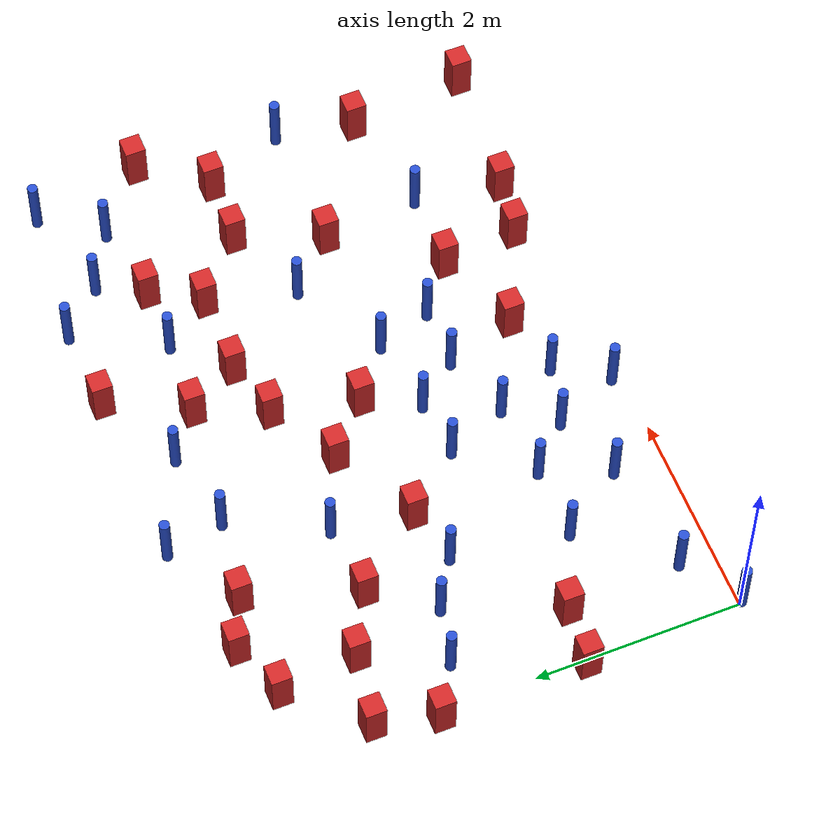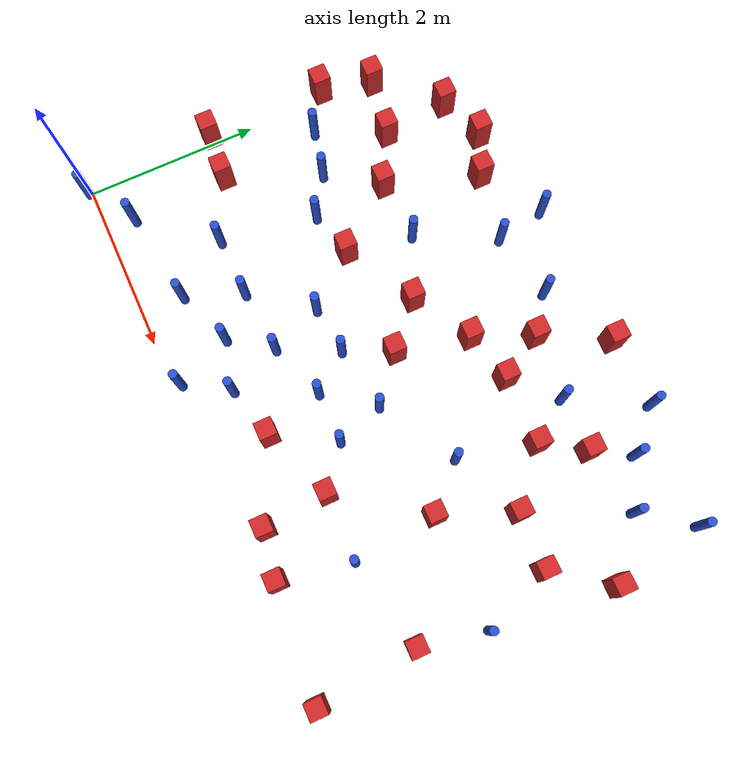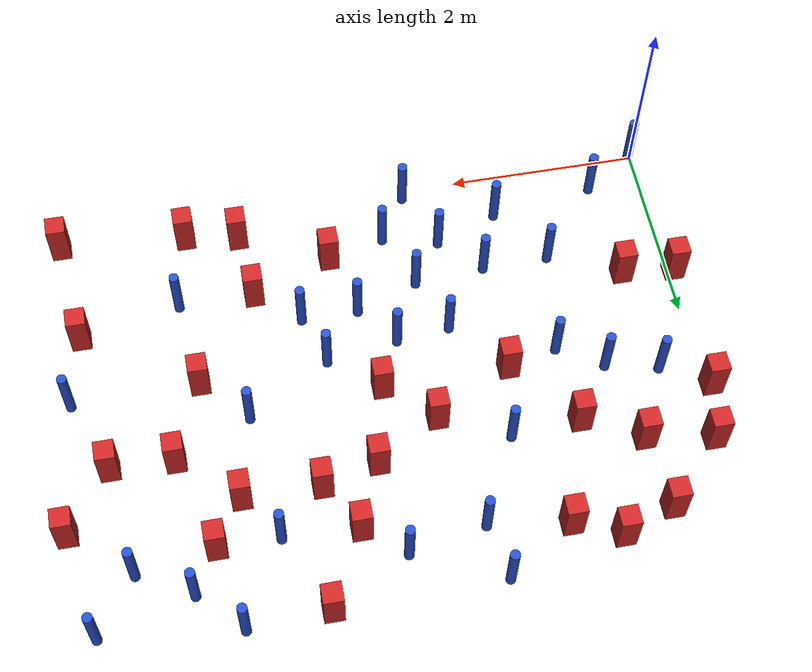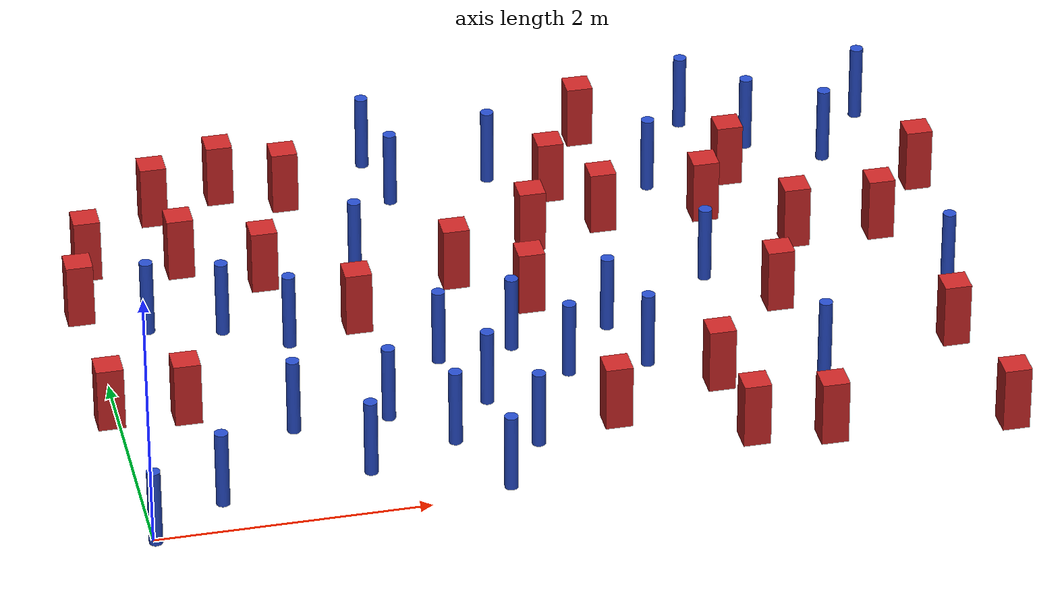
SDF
<sdf version="1.6">
 <model name="dense_36">
  <model name="pole_obstacle1">
   <static>true</static>
   <pose>1.21539966875 1.14167519535 2.88873142074e-08 -9.90536689672e-09 4.60219948993e-07 -1.20965994959e-07</pose>
   <link name="link">
    <pose>0 0 0.3 0 -0 0</pose>
    <inertial>
     <mass>1</mass>
     <inertia><ixx>0.145833</ixx><ixy>0</ixy><ixz>0</ixz><iyy>0.145833</iyy><iyz>0</iyz><izz>0.125</izz></inertia>
    </inertial>
    <collision name="collision">
     <geometry><cylinder><radius>0.05</radius><length>.6</length></cylinder></geometry>
    </collision>
    <visual name="visual">
     <geometry><cylinder><radius>0.05</radius><length>.6</length></cylinder></geometry>
     <material>
      <script><name>Gazebo/Blue</name><uri>file://media/materials/scripts/gazebo.material</uri></script>
     </material>
    </visual>
   </link>
  </model>
  <model name="pole_obstacle2">
   <static>true</static>
   <pose>3.31272624957 1.4470777101 2.88873142074e-08 -9.90536689395e-09 4.60219949e-07 -1.20965994953e-07</pose>
   <link name="link">
    <pose>0 0 0.3 0 -0 0</pose>
    <inertial>
     <mass>1</mass>
     <inertia><ixx>0.145833</ixx><ixy>0</ixy><ixz>0</ixz><iyy>0.145833</iyy><iyz>0</iyz><izz>0.125</izz></inertia>
    </inertial>
    <collision name="collision">
     <geometry><cylinder><radius>0.05</radius><length>.6</length></cylinder></geometry>
    </collision>
    <visual name="visual">
     <geometry><cylinder><radius>0.05</radius><length>.6</length></cylinder></geometry>
     <material>
      <script><name>Gazebo/Blue</name><uri>file://media/materials/scripts/gazebo.material</uri></script>
     </material>
    </visual>
   </link>
  </model>
  <model name="square_post_obstacle31">
   <static>true</static>
   <pose>1.69926338025 4.18269708458 8.22691968438e-08 7.2212513382e-06 -7.54495500217e-07 2.29674213826e-05</pose>
   <link name="link">
    <pose>0 0 0.25 0 -0 0</pose>
    <inertial>
     <mass>100</mass>
     <inertia>
      <ixx>0.166667</ixx>
      <ixy>0</ixy>
      <ixz>0</ixz>
      <iyy>0.166667</iyy>
      <iyz>0</iyz>
      <izz>0.166667</izz>
     </inertia>
    </inertial>
    <collision name="collision"><geometry><box><size>.2 .2 .5</size></box></geometry></collision>
    <visual name="visual">
     <geometry><box><size>.2 .2 .5</size></box></geometry>
     <material>
      <script><name>Gazebo/Red</name><uri>file://media/materials/scripts/gazebo.material</uri></script>
     </material>
    </visual>
   </link>
  </model>
  <model name="pole_obstacle24">
   <static>true</static>
   <pose>4.58728867437 2.49431679976 2.88873142074e-08 -9.90536690245e-09 4.6021994898e-07 -1.20965994966e-07</pose>
   <link name="link">
    <pose>0 0 0.3 0 -0 0</pose>
    <inertial>
     <mass>1</mass>
     <inertia><ixx>0.145833</ixx><ixy>0</ixy><ixz>0</ixz><iyy>0.145833</iyy><iyz>0</iyz><izz>0.125</izz></inertia>
    </inertial>
    <collision name="collision">
     <geometry><cylinder><radius>0.05</radius><length>.6</length></cylinder></geometry>
    </collision>
    <visual name="visual">
     <geometry><cylinder><radius>0.05</radius><length>.6</length></cylinder></geometry>
     <material>
      <script><name>Gazebo/Blue</name><uri>file://media/materials/scripts/gazebo.material</uri></script>
     </material>
    </visual>
   </link>
  </model>
  <model name="pole_obstacle26">
   <static>true</static>
   <pose>5.88674631557 3.96535810037 2.88873142074e-08 -9.9053669014e-09 4.60219948982e-07 -1.20965994965e-07</pose>
   <link name="link">
    <pose>0 0 0.3 0 -0 0</pose>
    <inertial>
     <mass>1</mass>
     <inertia><ixx>0.145833</ixx><ixy>0</ixy><ixz>0</ixz><iyy>0.145833</iyy><iyz>0</iyz><izz>0.125</izz></inertia>
    </inertial>
    <collision name="collision">
     <geometry><cylinder><radius>0.05</radius><length>.6</length></cylinder></geometry>
    </collision>
    <visual name="visual">
     <geometry><cylinder><radius>0.05</radius><length>.6</length></cylinder></geometry>
     <material>
      <script><name>Gazebo/Blue</name><uri>file://media/materials/scripts/gazebo.material</uri></script>
     </material>
    </visual>
   </link>
  </model>
  <model name="pole_obstacle28">
   <static>true</static>
   <pose>6.29714605439 4.52770322706 2.88873142074e-08 -9.90536690842e-09 4.60219948965e-07 -1.20965994976e-07</pose>
   <link name="link">
    <pose>0 0 0.3 0 -0 0</pose>
    <inertial>
     <mass>1</mass>
     <inertia><ixx>0.145833</ixx><ixy>0</ixy><ixz>0</ixz><iyy>0.145833</iyy><iyz>0</iyz><izz>0.125</izz></inertia>
    </inertial>
    <collision name="collision">
     <geometry><cylinder><radius>0.05</radius><length>.6</length></cylinder></geometry>
    </collision>
    <visual name="visual">
     <geometry><cylinder><radius>0.05</radius><length>.6</length></cylinder></geometry>
     <material>
      <script><name>Gazebo/Blue</name><uri>file://media/materials/scripts/gazebo.material</uri></script>
     </material>
    </visual>
   </link>
  </model>
  <model name="pole_obstacle29">
   <static>true</static>
   <pose>0.558175955447 0.34549063756 2.88873142074e-08 -9.90536689558e-09 4.60219948996e-07 -1.20965994957e-07</pose>
   <link name="link">
    <pose>0 0 0.3 0 -0 0</pose>
    <inertial>
     <mass>1</mass>
     <inertia><ixx>0.145833</ixx><ixy>0</ixy><ixz>0</ixz><iyy>0.145833</iyy><iyz>0</iyz><izz>0.125</izz></inertia>
    </inertial>
    <collision name="collision">
     <geometry><cylinder><radius>0.05</radius><length>.6</length></cylinder></geometry>
    </collision>
    <visual name="visual">
     <geometry><cylinder><radius>0.05</radius><length>.6</length></cylinder></geometry>
     <material>
      <script><name>Gazebo/Blue</name><uri>file://media/materials/scripts/gazebo.material</uri></script>
     </material>
    </visual>
   </link>
  </model>
  <model name="pole_obstacle30">
   <static>true</static>
   <pose>4.92379157811 4.68522182047 2.88873142074e-08 -9.90536690842e-09 4.60219948965e-07 -1.20965994976e-07</pose>
   <link name="link">
    <pose>0 0 0.3 0 -0 0</pose>
    <inertial>
     <mass>1</mass>
     <inertia><ixx>0.145833</ixx><ixy>0</ixy><ixz>0</ixz><iyy>0.145833</iyy><iyz>0</iyz><izz>0.125</izz></inertia>
    </inertial>
    <collision name="collision">
     <geometry><cylinder><radius>0.05</radius><length>.6</length></cylinder></geometry>
    </collision>
    <visual name="visual">
     <geometry><cylinder><radius>0.05</radius><length>.6</length></cylinder></geometry>
     <material>
      <script><name>Gazebo/Blue</name><uri>file://media/materials/scripts/gazebo.material</uri></script>
     </material>
    </visual>
   </link>
  </model>
  <model name="square_post_obstacle36">
   <static>true</static>
   <pose>6.17569900142 1.2903598487 8.22691968438e-08 7.2212513382e-06 -7.54495500217e-07 2.29674213826e-05</pose>
   <link name="link">
    <pose>0 0 0.25 0 -0 0</pose>
    <inertial>
     <mass>100</mass>
     <inertia>
      <ixx>0.166667</ixx>
      <ixy>0</ixy>
      <ixz>0</ixz>
      <iyy>0.166667</iyy>
      <iyz>0</iyz>
      <izz>0.166667</izz>
     </inertia>
    </inertial>
    <collision name="collision"><geometry><box><size>.2 .2 .5</size></box></geometry></collision>
    <visual name="visual">
     <geometry><box><size>.2 .2 .5</size></box></geometry>
     <material>
      <script><name>Gazebo/Red</name><uri>file://media/materials/scripts/gazebo.material</uri></script>
     </material>
    </visual>
   </link>
  </model>
  <model name="square_post_obstacle38">
   <static>true</static>
   <pose>-0.0602586245994 2.94378712359 8.22691968438e-08 7.2212513382e-06 -7.54495500217e-07 2.29674213826e-05</pose>
   <link name="link">
    <pose>0 0 0.25 0 -0 0</pose>
    <inertial>
     <mass>100</mass>
     <inertia>
      <ixx>0.166667</ixx>
      <ixy>0</ixy>
      <ixz>0</ixz>
      <iyy>0.166667</iyy>
      <iyz>0</iyz>
      <izz>0.166667</izz>
     </inertia>
    </inertial>
    <collision name="collision"><geometry><box><size>.2 .2 .5</size></box></geometry></collision>
    <visual name="visual">
     <geometry><box><size>.2 .2 .5</size></box></geometry>
     <material>
      <script><name>Gazebo/Red</name><uri>file://media/materials/scripts/gazebo.material</uri></script>
     </material>
    </visual>
   </link>
  </model>
  <model name="pole_obstacle43">
   <static>true</static>
   <pose>2.50424480207 4.05057288636 2.88873142074e-08 -9.90536689859e-09 4.60219948989e-07 -1.20965994961e-07</pose>
   <link name="link">
    <pose>0 0 0.3 0 -0 0</pose>
    <inertial>
     <mass>1</mass>
     <inertia><ixx>0.145833</ixx><ixy>0</ixy><ixz>0</ixz><iyy>0.145833</iyy><iyz>0</iyz><izz>0.125</izz></inertia>
    </inertial>
    <collision name="collision">
     <geometry><cylinder><radius>0.05</radius><length>.6</length></cylinder></geometry>
    </collision>
    <visual name="visual">
     <geometry><cylinder><radius>0.05</radius><length>.6</length></cylinder></geometry>
     <material>
      <script><name>Gazebo/Blue</name><uri>file://media/materials/scripts/gazebo.material</uri></script>
     </material>
    </visual>
   </link>
  </model>
  <model name="square_post_obstacle41">
   <static>true</static>
   <pose>4.97465609729 0.240932733704 8.22691968438e-08 7.2212513382e-06 -7.54495500217e-07 2.29674213826e-05</pose>
   <link name="link">
    <pose>0 0 0.25 0 -0 0</pose>
    <inertial>
     <mass>100</mass>
     <inertia>
      <ixx>0.166667</ixx>
      <ixy>0</ixy>
      <ixz>0</ixz>
      <iyy>0.166667</iyy>
      <iyz>0</iyz>
      <izz>0.166667</izz>
     </inertia>
    </inertial>
    <collision name="collision"><geometry><box><size>.2 .2 .5</size></box></geometry></collision>
    <visual name="visual">
     <geometry><box><size>.2 .2 .5</size></box></geometry>
     <material>
      <script><name>Gazebo/Red</name><uri>file://media/materials/scripts/gazebo.material</uri></script>
     </material>
    </visual>
   </link>
  </model>
  <model name="square_post_obstacle47">
   <static>true</static>
   <pose>4.09818582257 4.64468004644 8.22691968438e-08 7.2212513382e-06 -7.54495500217e-07 2.29674213826e-05</pose>
   <link name="link">
    <pose>0 0 0.25 0 -0 0</pose>
    <inertial>
     <mass>100</mass>
     <inertia>
      <ixx>0.166667</ixx>
      <ixy>0</ixy>
      <ixz>0</ixz>
      <iyy>0.166667</iyy>
      <iyz>0</iyz>
      <izz>0.166667</izz>
     </inertia>
    </inertial>
    <collision name="collision"><geometry><box><size>.2 .2 .5</size></box></geometry></collision>
    <visual name="visual">
     <geometry><box><size>.2 .2 .5</size></box></geometry>
     <material>
      <script><name>Gazebo/Red</name><uri>file://media/materials/scripts/gazebo.material</uri></script>
     </material>
    </visual>
   </link>
  </model>
  <model name="square_post_obstacle56">
   <static>true</static>
   <pose>0.768524490775 3.41879723513 8.22691968438e-08 7.2212513382e-06 -7.54495500217e-07 2.29674213826e-05</pose>
   <link name="link">
    <pose>0 0 0.25 0 -0 0</pose>
    <inertial>
     <mass>100</mass>
     <inertia>
      <ixx>0.166667</ixx>
      <ixy>0</ixy>
      <ixz>0</ixz>
      <iyy>0.166667</iyy>
      <iyz>0</iyz>
      <izz>0.166667</izz>
     </inertia>
    </inertial>
    <collision name="collision"><geometry><box><size>.2 .2 .5</size></box></geometry></collision>
    <visual name="visual">
     <geometry><box><size>.2 .2 .5</size></box></geometry>
     <material>
      <script><name>Gazebo/Red</name><uri>file://media/materials/scripts/gazebo.material</uri></script>
     </material>
    </visual>
   </link>
  </model>
  <model name="square_post_obstacle57">
   <static>true</static>
   <pose>3.50818055181 0.766504139414 8.22691968438e-08 7.2212513382e-06 -7.54495500217e-07 2.29674213826e-05</pose>
   <link name="link">
    <pose>0 0 0.25 0 -0 0</pose>
    <inertial>
     <mass>100</mass>
     <inertia>
      <ixx>0.166667</ixx>
      <ixy>0</ixy>
      <ixz>0</ixz>
      <iyy>0.166667</iyy>
      <iyz>0</iyz>
      <izz>0.166667</izz>
     </inertia>
    </inertial>
    <collision name="collision"><geometry><box><size>.2 .2 .5</size></box></geometry></collision>
    <visual name="visual">
     <geometry><box><size>.2 .2 .5</size></box></geometry>
     <material>
      <script><name>Gazebo/Red</name><uri>file://media/materials/scripts/gazebo.material</uri></script>
     </material>
    </visual>
   </link>
  </model>
  <model name="pole_obstacle55">
   <static>true</static>
   <pose>6.34371870974 2.04272851545 2.88873142074e-08 -9.90536689683e-09 4.60219948993e-07 -1.20965994957e-07</pose>
   <link name="link">
    <pose>0 0 0.3 0 -0 0</pose>
    <inertial>
     <mass>1</mass>
     <inertia><ixx>0.145833</ixx><ixy>0</ixy><ixz>0</ixz><iyy>0.145833</iyy><iyz>0</iyz><izz>0.125</izz></inertia>
    </inertial>
    <collision name="collision">
     <geometry><cylinder><radius>0.05</radius><length>.6</length></cylinder></geometry>
    </collision>
    <visual name="visual">
     <geometry><cylinder><radius>0.05</radius><length>.6</length></cylinder></geometry>
     <material>
      <script><name>Gazebo/Blue</name><uri>file://media/materials/scripts/gazebo.material</uri></script>
     </material>
    </visual>
   </link>
  </model>
  <model name="square_post_obstacle65">
   <static>true</static>
   <pose>1.23272457439 4.38700940078 8.22691968438e-08 7.2212513382e-06 -7.54495500217e-07 2.29674213826e-05</pose>
   <link name="link">
    <pose>0 0 0.25 0 -0 0</pose>
    <inertial>
     <mass>100</mass>
     <inertia>
      <ixx>0.166667</ixx>
      <ixy>0</ixy>
      <ixz>0</ixz>
      <iyy>0.166667</iyy>
      <iyz>0</iyz>
      <izz>0.166667</izz>
     </inertia>
    </inertial>
    <collision name="collision"><geometry><box><size>.2 .2 .5</size></box></geometry></collision>
    <visual name="visual">
     <geometry><box><size>.2 .2 .5</size></box></geometry>
     <material>
      <script><name>Gazebo/Red</name><uri>file://media/materials/scripts/gazebo.material</uri></script>
     </material>
    </visual>
   </link>
  </model>
  <model name="pole_obstacle64">
   <static>true</static>
   <pose>0.941703902987 2.533534934 2.88873142074e-08 -9.90536689636e-09 4.60219948994e-07 -1.20965994958e-07</pose>
   <link name="link">
    <pose>0 0 0.3 0 -0 0</pose>
    <inertial>
     <mass>1</mass>
     <inertia><ixx>0.145833</ixx><ixy>0</ixy><ixz>0</ixz><iyy>0.145833</iyy><iyz>0</iyz><izz>0.125</izz></inertia>
    </inertial>
    <collision name="collision">
     <geometry><cylinder><radius>0.05</radius><length>.6</length></cylinder></geometry>
    </collision>
    <visual name="visual">
     <geometry><cylinder><radius>0.05</radius><length>.6</length></cylinder></geometry>
     <material>
      <script><name>Gazebo/Blue</name><uri>file://media/materials/scripts/gazebo.material</uri></script>
     </material>
    </visual>
   </link>
  </model>
  <model name="square_post_obstacle67">
   <static>true</static>
   <pose>6.01877345874 2.8308237326 8.22691968438e-08 7.2212513382e-06 -7.54495500217e-07 2.29674213826e-05</pose>
   <link name="link">
    <pose>0 0 0.25 0 -0 0</pose>
    <inertial>
     <mass>100</mass>
     <inertia>
      <ixx>0.166667</ixx>
      <ixy>0</ixy>
      <ixz>0</ixz>
      <iyy>0.166667</iyy>
      <iyz>0</iyz>
      <izz>0.166667</izz>
     </inertia>
    </inertial>
    <collision name="collision"><geometry><box><size>.2 .2 .5</size></box></geometry></collision>
    <visual name="visual">
     <geometry><box><size>.2 .2 .5</size></box></geometry>
     <material>
      <script><name>Gazebo/Red</name><uri>file://media/materials/scripts/gazebo.material</uri></script>
     </material>
    </visual>
   </link>
  </model>
  <model name="square_post_obstacle69">
   <static>true</static>
   <pose>5.36907606385 2.85567561112 8.22691968438e-08 7.2212513382e-06 -7.54495500217e-07 2.29674213826e-05</pose>
   <link name="link">
    <pose>0 0 0.25 0 -0 0</pose>
    <inertial>
     <mass>100</mass>
     <inertia>
      <ixx>0.166667</ixx>
      <ixy>0</ixy>
      <ixz>0</ixz>
      <iyy>0.166667</iyy>
      <iyz>0</iyz>
      <izz>0.166667</izz>
     </inertia>
    </inertial>
    <collision name="collision"><geometry><box><size>.2 .2 .5</size></box></geometry></collision>
    <visual name="visual">
     <geometry><box><size>.2 .2 .5</size></box></geometry>
     <material>
      <script><name>Gazebo/Red</name><uri>file://media/materials/scripts/gazebo.material</uri></script>
     </material>
    </visual>
   </link>
  </model>
  <model name="pole_obstacle78">
   <static>true</static>
   <pose>1.39151959776 2.25622134894 2.88873142074e-08 -9.90536689791e-09 4.6021994899e-07 -1.20965994959e-07</pose>
   <link name="link">
    <pose>0 0 0.3 0 -0 0</pose>
    <inertial>
     <mass>1</mass>
     <inertia><ixx>0.145833</ixx><ixy>0</ixy><ixz>0</ixz><iyy>0.145833</iyy><iyz>0</iyz><izz>0.125</izz></inertia>
    </inertial>
    <collision name="collision">
     <geometry><cylinder><radius>0.05</radius><length>.6</length></cylinder></geometry>
    </collision>
    <visual name="visual">
     <geometry><cylinder><radius>0.05</radius><length>.6</length></cylinder></geometry>
     <material>
      <script><name>Gazebo/Blue</name><uri>file://media/materials/scripts/gazebo.material</uri></script>
     </material>
    </visual>
   </link>
  </model>
  <model name="pole_obstacle88">
   <static>true</static>
   <pose>5.13687059473 1.06550369926 2.88873142074e-08 -9.90536689445e-09 4.60219948999e-07 -1.20965994956e-07</pose>
   <link name="link">
    <pose>0 0 0.3 0 -0 0</pose>
    <inertial>
     <mass>1</mass>
     <inertia><ixx>0.145833</ixx><ixy>0</ixy><ixz>0</ixz><iyy>0.145833</iyy><iyz>0</iyz><izz>0.125</izz></inertia>
    </inertial>
    <collision name="collision">
     <geometry><cylinder><radius>0.05</radius><length>.6</length></cylinder></geometry>
    </collision>
    <visual name="visual">
     <geometry><cylinder><radius>0.05</radius><length>.6</length></cylinder></geometry>
     <material>
      <script><name>Gazebo/Blue</name><uri>file://media/materials/scripts/gazebo.material</uri></script>
     </material>
    </visual>
   </link>
  </model>
  <model name="pole_obstacle96">
   <static>true</static>
   <pose>2.3952366601 4.62188282429 2.88873142074e-08 -9.90536689859e-09 4.60219948989e-07 -1.20965994961e-07</pose>
   <link name="link">
    <pose>0 0 0.3 0 -0 0</pose>
    <inertial>
     <mass>1</mass>
     <inertia><ixx>0.145833</ixx><ixy>0</ixy><ixz>0</ixz><iyy>0.145833</iyy><iyz>0</iyz><izz>0.125</izz></inertia>
    </inertial>
    <collision name="collision">
     <geometry><cylinder><radius>0.05</radius><length>.6</length></cylinder></geometry>
    </collision>
    <visual name="visual">
     <geometry><cylinder><radius>0.05</radius><length>.6</length></cylinder></geometry>
     <material>
      <script><name>Gazebo/Blue</name><uri>file://media/materials/scripts/gazebo.material</uri></script>
     </material>
    </visual>
   </link>
  </model>
  <model name="square_post_obstacle97">
   <static>true</static>
   <pose>3.22430053221 2.39597877485 8.22691968438e-08 7.2212513382e-06 -7.54495500217e-07 2.29674213826e-05</pose>
   <link name="link">
    <pose>0 0 0.25 0 -0 0</pose>
    <inertial>
     <mass>100</mass>
     <inertia>
      <ixx>0.166667</ixx>
      <ixy>0</ixy>
      <ixz>0</ixz>
      <iyy>0.166667</iyy>
      <iyz>0</iyz>
      <izz>0.166667</izz>
     </inertia>
    </inertial>
    <collision name="collision"><geometry><box><size>.2 .2 .5</size></box></geometry></collision>
    <visual name="visual">
     <geometry><box><size>.2 .2 .5</size></box></geometry>
     <material>
      <script><name>Gazebo/Red</name><uri>file://media/materials/scripts/gazebo.material</uri></script>
     </material>
    </visual>
   </link>
  </model>
  <model name="pole_obstacle116">
   <static>true</static>
   <pose>4.46539809369 3.83447423002 2.88873142074e-08 -9.90536690245e-09 4.6021994898e-07 -1.20965994966e-07</pose>
   <link name="link">
    <pose>0 0 0.3 0 -0 0</pose>
    <inertial>
     <mass>1</mass>
     <inertia><ixx>0.145833</ixx><ixy>0</ixy><ixz>0</ixz><iyy>0.145833</iyy><iyz>0</iyz><izz>0.125</izz></inertia>
    </inertial>
    <collision name="collision">
     <geometry><cylinder><radius>0.05</radius><length>.6</length></cylinder></geometry>
    </collision>
    <visual name="visual">
     <geometry><cylinder><radius>0.05</radius><length>.6</length></cylinder></geometry>
     <material>
      <script><name>Gazebo/Blue</name><uri>file://media/materials/scripts/gazebo.material</uri></script>
     </material>
    </visual>
   </link>
  </model>
  <model name="square_post_obstacle106">
   <static>true</static>
   <pose>0.491554787175 1.47907717243 8.22691968438e-08 7.2212513382e-06 -7.54495500217e-07 2.29674213826e-05</pose>
   <link name="link">
    <pose>0 0 0.25 0 -0 0</pose>
    <inertial>
     <mass>100</mass>
     <inertia>
      <ixx>0.166667</ixx>
      <ixy>0</ixy>
      <ixz>0</ixz>
      <iyy>0.166667</iyy>
      <iyz>0</iyz>
      <izz>0.166667</izz>
     </inertia>
    </inertial>
    <collision name="collision"><geometry><box><size>.2 .2 .5</size></box></geometry></collision>
    <visual name="visual">
     <geometry><box><size>.2 .2 .5</size></box></geometry>
     <material>
      <script><name>Gazebo/Red</name><uri>file://media/materials/scripts/gazebo.material</uri></script>
     </material>
    </visual>
   </link>
  </model>
  <model name="pole_obstacle119">
   <static>true</static>
   <pose>1.65755842974 0.504248588028 2.88873142074e-08 -9.90536689799e-09 4.6021994899e-07 -1.20965994959e-07</pose>
   <link name="link">
    <pose>0 0 0.3 0 -0 0</pose>
    <inertial>
     <mass>1</mass>
     <inertia><ixx>0.145833</ixx><ixy>0</ixy><ixz>0</ixz><iyy>0.145833</iyy><iyz>0</iyz><izz>0.125</izz></inertia>
    </inertial>
    <collision name="collision">
     <geometry><cylinder><radius>0.05</radius><length>.6</length></cylinder></geometry>
    </collision>
    <visual name="visual">
     <geometry><cylinder><radius>0.05</radius><length>.6</length></cylinder></geometry>
     <material>
      <script><name>Gazebo/Blue</name><uri>file://media/materials/scripts/gazebo.material</uri></script>
     </material>
    </visual>
   </link>
  </model>
  <model name="pole_obstacle121">
   <static>true</static>
   <pose>2.65310656348 1.21262609922 2.88873142074e-08 -9.90536689395e-09 4.60219949e-07 -1.20965994953e-07</pose>
   <link name="link">
    <pose>0 0 0.3 0 -0 0</pose>
    <inertial>
     <mass>1</mass>
     <inertia><ixx>0.145833</ixx><ixy>0</ixy><ixz>0</ixz><iyy>0.145833</iyy><iyz>0</iyz><izz>0.125</izz></inertia>
    </inertial>
    <collision name="collision">
     <geometry><cylinder><radius>0.05</radius><length>.6</length></cylinder></geometry>
    </collision>
    <visual name="visual">
     <geometry><cylinder><radius>0.05</radius><length>.6</length></cylinder></geometry>
     <material>
      <script><name>Gazebo/Blue</name><uri>file://media/materials/scripts/gazebo.material</uri></script>
     </material>
    </visual>
   </link>
  </model>
  <model name="pole_obstacle122">
   <static>true</static>
   <pose>2.59131585483 0.109405834646 2.88873142074e-08 -9.90536691979e-09 4.60219948939e-07 -1.20965994984e-07</pose>
   <link name="link">
    <pose>0 0 0.3 0 -0 0</pose>
    <inertial>
     <mass>1</mass>
     <inertia><ixx>0.145833</ixx><ixy>0</ixy><ixz>0</ixz><iyy>0.145833</iyy><iyz>0</iyz><izz>0.125</izz></inertia>
    </inertial>
    <collision name="collision">
     <geometry><cylinder><radius>0.05</radius><length>.6</length></cylinder></geometry>
    </collision>
    <visual name="visual">
     <geometry><cylinder><radius>0.05</radius><length>.6</length></cylinder></geometry>
     <material>
      <script><name>Gazebo/Blue</name><uri>file://media/materials/scripts/gazebo.material</uri></script>
     </material>
    </visual>
   </link>
  </model>
  <model name="square_post_obstacle113">
   <static>true</static>
   <pose>5.03201818125 2.03035328564 8.22691968438e-08 7.2212513382e-06 -7.54495500217e-07 2.29674213826e-05</pose>
   <link name="link">
    <pose>0 0 0.25 0 -0 0</pose>
    <inertial>
     <mass>100</mass>
     <inertia>
      <ixx>0.166667</ixx>
      <ixy>0</ixy>
      <ixz>0</ixz>
      <iyy>0.166667</iyy>
      <iyz>0</iyz>
      <izz>0.166667</izz>
     </inertia>
    </inertial>
    <collision name="collision"><geometry><box><size>.2 .2 .5</size></box></geometry></collision>
    <visual name="visual">
     <geometry><box><size>.2 .2 .5</size></box></geometry>
     <material>
      <script><name>Gazebo/Red</name><uri>file://media/materials/scripts/gazebo.material</uri></script>
     </material>
    </visual>
   </link>
  </model>
  <model name="pole_obstacle138">
   <static>true</static>
   <pose>2.97544988494 1.87051776934 2.88873142074e-08 -9.90536689395e-09 4.60219949e-07 -1.20965994953e-07</pose>
   <link name="link">
    <pose>0 0 0.3 0 -0 0</pose>
    <inertial>
     <mass>1</mass>
     <inertia><ixx>0.145833</ixx><ixy>0</ixy><ixz>0</ixz><iyy>0.145833</iyy><iyz>0</iyz><izz>0.125</izz></inertia>
    </inertial>
    <collision name="collision">
     <geometry><cylinder><radius>0.05</radius><length>.6</length></cylinder></geometry>
    </collision>
    <visual name="visual">
     <geometry><cylinder><radius>0.05</radius><length>.6</length></cylinder></geometry>
     <material>
      <script><name>Gazebo/Blue</name><uri>file://media/materials/scripts/gazebo.material</uri></script>
     </material>
    </visual>
   </link>
  </model>
  <model name="square_post_obstacle119">
   <static>true</static>
   <pose>-0.0599442533071 1.5346006033 8.22691968438e-08 7.2212513382e-06 -7.54495500217e-07 2.29674213826e-05</pose>
   <link name="link">
    <pose>0 0 0.25 0 -0 0</pose>
    <inertial>
     <mass>100</mass>
     <inertia>
      <ixx>0.166667</ixx>
      <ixy>0</ixy>
      <ixz>0</ixz>
      <iyy>0.166667</iyy>
      <iyz>0</iyz>
      <izz>0.166667</izz>
     </inertia>
    </inertial>
    <collision name="collision"><geometry><box><size>.2 .2 .5</size></box></geometry></collision>
    <visual name="visual">
     <geometry><box><size>.2 .2 .5</size></box></geometry>
     <material>
      <script><name>Gazebo/Red</name><uri>file://media/materials/scripts/gazebo.material</uri></script>
     </material>
    </visual>
   </link>
  </model>
  <model name="square_post_obstacle123">
   <static>true</static>
   <pose>3.41316728436 3.22763096971 8.22691968438e-08 7.2212513382e-06 -7.54495500217e-07 2.29674213826e-05</pose>
   <link name="link">
    <pose>0 0 0.25 0 -0 0</pose>
    <inertial>
     <mass>100</mass>
     <inertia>
      <ixx>0.166667</ixx>
      <ixy>0</ixy>
      <ixz>0</ixz>
      <iyy>0.166667</iyy>
      <iyz>0</iyz>
      <izz>0.166667</izz>
     </inertia>
    </inertial>
    <collision name="collision"><geometry><box><size>.2 .2 .5</size></box></geometry></collision>
    <visual name="visual">
     <geometry><box><size>.2 .2 .5</size></box></geometry>
     <material>
      <script><name>Gazebo/Red</name><uri>file://media/materials/scripts/gazebo.material</uri></script>
     </material>
    </visual>
   </link>
  </model>
  <model name="square_post_obstacle127">
   <static>true</static>
   <pose>5.08931030166 3.83615676052 8.22691968438e-08 7.2212513382e-06 -7.54495500217e-07 2.29674213826e-05</pose>
   <link name="link">
    <pose>0 0 0.25 0 -0 0</pose>
    <inertial>
     <mass>100</mass>
     <inertia>
      <ixx>0.166667</ixx>
      <ixy>0</ixy>
      <ixz>0</ixz>
      <iyy>0.166667</iyy>
      <iyz>0</iyz>
      <izz>0.166667</izz>
     </inertia>
    </inertial>
    <collision name="collision"><geometry><box><size>.2 .2 .5</size></box></geometry></collision>
    <visual name="visual">
     <geometry><box><size>.2 .2 .5</size></box></geometry>
     <material>
      <script><name>Gazebo/Red</name><uri>file://media/materials/scripts/gazebo.material</uri></script>
     </material>
    </visual>
   </link>
  </model>
  <model name="pole_obstacle142">
   <static>true</static>
   <pose>5.34613406979 4.26592915778 2.88873142074e-08 -9.90536690842e-09 4.60219948965e-07 -1.20965994976e-07</pose>
   <link name="link">
    <pose>0 0 0.3 0 -0 0</pose>
    <inertial>
     <mass>1</mass>
     <inertia><ixx>0.145833</ixx><ixy>0</ixy><ixz>0</ixz><iyy>0.145833</iyy><iyz>0</iyz><izz>0.125</izz></inertia>
    </inertial>
    <collision name="collision">
     <geometry><cylinder><radius>0.05</radius><length>.6</length></cylinder></geometry>
    </collision>
    <visual name="visual">
     <geometry><cylinder><radius>0.05</radius><length>.6</length></cylinder></geometry>
     <material>
      <script><name>Gazebo/Blue</name><uri>file://media/materials/scripts/gazebo.material</uri></script>
     </material>
    </visual>
   </link>
  </model>
  <model name="square_post_obstacle135">
   <static>true</static>
   <pose>2.74764541 2.83754624088 8.22691968438e-08 7.2212513382e-06 -7.54495500217e-07 2.29674213826e-05</pose>
   <link name="link">
    <pose>0 0 0.25 0 -0 0</pose>
    <inertial>
     <mass>100</mass>
     <inertia>
      <ixx>0.166667</ixx>
      <ixy>0</ixy>
      <ixz>0</ixz>
      <iyy>0.166667</iyy>
      <iyz>0</iyz>
      <izz>0.166667</izz>
     </inertia>
    </inertial>
    <collision name="collision"><geometry><box><size>.2 .2 .5</size></box></geometry></collision>
    <visual name="visual">
     <geometry><box><size>.2 .2 .5</size></box></geometry>
     <material>
      <script><name>Gazebo/Red</name><uri>file://media/materials/scripts/gazebo.material</uri></script>
     </material>
    </visual>
   </link>
  </model>
  <model name="pole_obstacle145">
   <static>true</static>
   <pose>2.90043295615 0.603558059964 2.88873142074e-08 -9.90536689285e-09 4.60219949002e-07 -1.20965994953e-07</pose>
   <link name="link">
    <pose>0 0 0.3 0 -0 0</pose>
    <inertial>
     <mass>1</mass>
     <inertia><ixx>0.145833</ixx><ixy>0</ixy><ixz>0</ixz><iyy>0.145833</iyy><iyz>0</iyz><izz>0.125</izz></inertia>
    </inertial>
    <collision name="collision">
     <geometry><cylinder><radius>0.05</radius><length>.6</length></cylinder></geometry>
    </collision>
    <visual name="visual">
     <geometry><cylinder><radius>0.05</radius><length>.6</length></cylinder></geometry>
     <material>
      <script><name>Gazebo/Blue</name><uri>file://media/materials/scripts/gazebo.material</uri></script>
     </material>
    </visual>
   </link>
  </model>
  <model name="pole_obstacle146">
   <static>true</static>
   <pose>1.91426054527 1.15429620357 2.88873142074e-08 -9.90536689672e-09 4.60219948993e-07 -1.20965994959e-07</pose>
   <link name="link">
    <pose>0 0 0.3 0 -0 0</pose>
    <inertial>
     <mass>1</mass>
     <inertia><ixx>0.145833</ixx><ixy>0</ixy><ixz>0</ixz><iyy>0.145833</iyy><iyz>0</iyz><izz>0.125</izz></inertia>
    </inertial>
    <collision name="collision">
     <geometry><cylinder><radius>0.05</radius><length>.6</length></cylinder></geometry>
    </collision>
    <visual name="visual">
     <geometry><cylinder><radius>0.05</radius><length>.6</length></cylinder></geometry>
     <material>
      <script><name>Gazebo/Blue</name><uri>file://media/materials/scripts/gazebo.material</uri></script>
     </material>
    </visual>
   </link>
  </model>
  <model name="square_post_obstacle155">
   <static>true</static>
   <pose>3.69891914513 3.88703211298 8.22691968438e-08 7.2212513382e-06 -7.54495500217e-07 2.29674213826e-05</pose>
   <link name="link">
    <pose>0 0 0.25 0 -0 0</pose>
    <inertial>
     <mass>100</mass>
     <inertia>
      <ixx>0.166667</ixx>
      <ixy>0</ixy>
      <ixz>0</ixz>
      <iyy>0.166667</iyy>
      <iyz>0</iyz>
      <izz>0.166667</izz>
     </inertia>
    </inertial>
    <collision name="collision"><geometry><box><size>.2 .2 .5</size></box></geometry></collision>
    <visual name="visual">
     <geometry><box><size>.2 .2 .5</size></box></geometry>
     <material>
      <script><name>Gazebo/Red</name><uri>file://media/materials/scripts/gazebo.material</uri></script>
     </material>
    </visual>
   </link>
  </model>
  <model name="square_post_obstacle159">
   <static>true</static>
   <pose>1.9224101247 2.39501508181 8.22691968438e-08 7.2212513382e-06 -7.54495500217e-07 2.29674213826e-05</pose>
   <link name="link">
    <pose>0 0 0.25 0 -0 0</pose>
    <inertial>
     <mass>100</mass>
     <inertia>
      <ixx>0.166667</ixx>
      <ixy>0</ixy>
      <ixz>0</ixz>
      <iyy>0.166667</iyy>
      <iyz>0</iyz>
      <izz>0.166667</izz>
     </inertia>
    </inertial>
    <collision name="collision"><geometry><box><size>.2 .2 .5</size></box></geometry></collision>
    <visual name="visual">
     <geometry><box><size>.2 .2 .5</size></box></geometry>
     <material>
      <script><name>Gazebo/Red</name><uri>file://media/materials/scripts/gazebo.material</uri></script>
     </material>
    </visual>
   </link>
  </model>
  <model name="square_post_obstacle161">
   <static>true</static>
   <pose>6.29381989404 0.133482597143 8.22691968438e-08 7.2212513382e-06 -7.54495500217e-07 2.29674213826e-05</pose>
   <link name="link">
    <pose>0 0 0.25 0 -0 0</pose>
    <inertial>
     <mass>100</mass>
     <inertia>
      <ixx>0.166667</ixx>
      <ixy>0</ixy>
      <ixz>0</ixz>
      <iyy>0.166667</iyy>
      <iyz>0</iyz>
      <izz>0.166667</izz>
     </inertia>
    </inertial>
    <collision name="collision"><geometry><box><size>.2 .2 .5</size></box></geometry></collision>
    <visual name="visual">
     <geometry><box><size>.2 .2 .5</size></box></geometry>
     <material>
      <script><name>Gazebo/Red</name><uri>file://media/materials/scripts/gazebo.material</uri></script>
     </material>
    </visual>
   </link>
  </model>
  <model name="pole_obstacle172">
   <static>true</static>
   <pose>3.72227441815 1.98897965829 2.88873142074e-08 -9.90536690039e-09 4.60219948984e-07 -1.20965994965e-07</pose>
   <link name="link">
    <pose>0 0 0.3 0 -0 0</pose>
    <inertial>
     <mass>1</mass>
     <inertia><ixx>0.145833</ixx><ixy>0</ixy><ixz>0</ixz><iyy>0.145833</iyy><iyz>0</iyz><izz>0.125</izz></inertia>
    </inertial>
    <collision name="collision">
     <geometry><cylinder><radius>0.05</radius><length>.6</length></cylinder></geometry>
    </collision>
    <visual name="visual">
     <geometry><cylinder><radius>0.05</radius><length>.6</length></cylinder></geometry>
     <material>
      <script><name>Gazebo/Blue</name><uri>file://media/materials/scripts/gazebo.material</uri></script>
     </material>
    </visual>
   </link>
  </model>
  <model name="pole_obstacle176">
   <static>true</static>
   <pose>2.41773125954 1.81174552178 2.88873142074e-08 -9.90536689395e-09 4.60219949e-07 -1.20965994953e-07</pose>
   <link name="link">
    <pose>0 0 0.3 0 -0 0</pose>
    <inertial>
     <mass>1</mass>
     <inertia><ixx>0.145833</ixx><ixy>0</ixy><ixz>0</ixz><iyy>0.145833</iyy><iyz>0</iyz><izz>0.125</izz></inertia>
    </inertial>
    <collision name="collision">
     <geometry><cylinder><radius>0.05</radius><length>.6</length></cylinder></geometry>
    </collision>
    <visual name="visual">
     <geometry><cylinder><radius>0.05</radius><length>.6</length></cylinder></geometry>
     <material>
      <script><name>Gazebo/Blue</name><uri>file://media/materials/scripts/gazebo.material</uri></script>
     </material>
    </visual>
   </link>
  </model>
  <model name="square_post_obstacle165">
   <static>true</static>
   <pose>4.78798428023 3.36490220905 8.22691968438e-08 7.2212513382e-06 -7.54495500217e-07 2.29674213826e-05</pose>
   <link name="link">
    <pose>0 0 0.25 0 -0 0</pose>
    <inertial>
     <mass>100</mass>
     <inertia>
      <ixx>0.166667</ixx>
      <ixy>0</ixy>
      <ixz>0</ixz>
      <iyy>0.166667</iyy>
      <iyz>0</iyz>
      <izz>0.166667</izz>
     </inertia>
    </inertial>
    <collision name="collision"><geometry><box><size>.2 .2 .5</size></box></geometry></collision>
    <visual name="visual">
     <geometry><box><size>.2 .2 .5</size></box></geometry>
     <material>
      <script><name>Gazebo/Red</name><uri>file://media/materials/scripts/gazebo.material</uri></script>
     </material>
    </visual>
   </link>
  </model>
  <model name="square_post_obstacle178">
   <static>true</static>
   <pose>0.692662502641 4.18692140781 8.22691968438e-08 7.2212513382e-06 -7.54495500217e-07 2.29674213826e-05</pose>
   <link name="link">
    <pose>0 0 0.25 0 -0 0</pose>
    <inertial>
     <mass>100</mass>
     <inertia>
      <ixx>0.166667</ixx>
      <ixy>0</ixy>
      <ixz>0</ixz>
      <iyy>0.166667</iyy>
      <iyz>0</iyz>
      <izz>0.166667</izz>
     </inertia>
    </inertial>
    <collision name="collision"><geometry><box><size>.2 .2 .5</size></box></geometry></collision>
    <visual name="visual">
     <geometry><box><size>.2 .2 .5</size></box></geometry>
     <material>
      <script><name>Gazebo/Red</name><uri>file://media/materials/scripts/gazebo.material</uri></script>
     </material>
    </visual>
   </link>
  </model>
  <model name="square_post_obstacle180">
   <static>true</static>
   <pose>1.34783124726 3.1108414837 8.22691968438e-08 7.2212513382e-06 -7.54495500217e-07 2.29674213826e-05</pose>
   <link name="link">
    <pose>0 0 0.25 0 -0 0</pose>
    <inertial>
     <mass>100</mass>
     <inertia>
      <ixx>0.166667</ixx>
      <ixy>0</ixy>
      <ixz>0</ixz>
      <iyy>0.166667</iyy>
      <iyz>0</iyz>
      <izz>0.166667</izz>
     </inertia>
    </inertial>
    <collision name="collision"><geometry><box><size>.2 .2 .5</size></box></geometry></collision>
    <visual name="visual">
     <geometry><box><size>.2 .2 .5</size></box></geometry>
     <material>
      <script><name>Gazebo/Red</name><uri>file://media/materials/scripts/gazebo.material</uri></script>
     </material>
    </visual>
   </link>
  </model>
  <model name="square_post_obstacle183">
   <static>true</static>
   <pose>4.35021783447 1.08118366919 8.22691968438e-08 7.2212513382e-06 -7.54495500217e-07 2.29674213826e-05</pose>
   <link name="link">
    <pose>0 0 0.25 0 -0 0</pose>
    <inertial>
     <mass>100</mass>
     <inertia>
      <ixx>0.166667</ixx>
      <ixy>0</ixy>
      <ixz>0</ixz>
      <iyy>0.166667</iyy>
      <iyz>0</iyz>
      <izz>0.166667</izz>
     </inertia>
    </inertial>
    <collision name="collision"><geometry><box><size>.2 .2 .5</size></box></geometry></collision>
    <visual name="visual">
     <geometry><box><size>.2 .2 .5</size></box></geometry>
     <material>
      <script><name>Gazebo/Red</name><uri>file://media/materials/scripts/gazebo.material</uri></script>
     </material>
    </visual>
   </link>
  </model>
  <model name="square_post_obstacle201">
   <static>true</static>
   <pose>4.42266007226 0.337198512406 8.22691968438e-08 7.2212513382e-06 -7.54495500217e-07 2.29674213826e-05</pose>
   <link name="link">
    <pose>0 0 0.25 0 -0 0</pose>
    <inertial>
     <mass>100</mass>
     <inertia>
      <ixx>0.166667</ixx>
      <ixy>0</ixy>
      <ixz>0</ixz>
      <iyy>0.166667</iyy>
      <iyz>0</iyz>
      <izz>0.166667</izz>
     </inertia>
    </inertial>
    <collision name="collision"><geometry><box><size>.2 .2 .5</size></box></geometry></collision>
    <visual name="visual">
     <geometry><box><size>.2 .2 .5</size></box></geometry>
     <material>
      <script><name>Gazebo/Red</name><uri>file://media/materials/scripts/gazebo.material</uri></script>
     </material>
    </visual>
   </link>
  </model>
  <model name="pole_obstacle192">
   <static>true</static>
   <pose>2.05589646519 3.15686019915 2.88873142074e-08 -9.90536690232e-09 4.6021994898e-07 -1.20965994968e-07</pose>
   <link name="link">
    <pose>0 0 0.3 0 -0 0</pose>
    <inertial>
     <mass>1</mass>
     <inertia><ixx>0.145833</ixx><ixy>0</ixy><ixz>0</ixz><iyy>0.145833</iyy><iyz>0</iyz><izz>0.125</izz></inertia>
    </inertial>
    <collision name="collision">
     <geometry><cylinder><radius>0.05</radius><length>.6</length></cylinder></geometry>
    </collision>
    <visual name="visual">
     <geometry><cylinder><radius>0.05</radius><length>.6</length></cylinder></geometry>
     <material>
      <script><name>Gazebo/Blue</name><uri>file://media/materials/scripts/gazebo.material</uri></script>
     </material>
    </visual>
   </link>
  </model>
  <model name="pole_obstacle195">
   <static>true</static>
   <pose>0.404799881524 2.66005291334 2.88873142074e-08 -9.90536689663e-09 4.60219948993e-07 -1.20965994959e-07</pose>
   <link name="link">
    <pose>0 0 0.3 0 -0 0</pose>
    <inertial>
     <mass>1</mass>
     <inertia><ixx>0.145833</ixx><ixy>0</ixy><ixz>0</ixz><iyy>0.145833</iyy><iyz>0</iyz><izz>0.125</izz></inertia>
    </inertial>
    <collision name="collision">
     <geometry><cylinder><radius>0.05</radius><length>.6</length></cylinder></geometry>
    </collision>
    <visual name="visual">
     <geometry><cylinder><radius>0.05</radius><length>.6</length></cylinder></geometry>
     <material>
      <script><name>Gazebo/Blue</name><uri>file://media/materials/scripts/gazebo.material</uri></script>
     </material>
    </visual>
   </link>
  </model>
  <model name="square_post_obstacle210">
   <static>true</static>
   <pose>6.48382465201 3.45672521851 8.22691968438e-08 7.2212513382e-06 -7.54495500217e-07 2.29674213826e-05</pose>
   <link name="link">
    <pose>0 0 0.25 0 -0 0</pose>
    <inertial>
     <mass>100</mass>
     <inertia>
      <ixx>0.166667</ixx>
      <ixy>0</ixy>
      <ixz>0</ixz>
      <iyy>0.166667</iyy>
      <iyz>0</iyz>
      <izz>0.166667</izz>
     </inertia>
    </inertial>
    <collision name="collision"><geometry><box><size>.2 .2 .5</size></box></geometry></collision>
    <visual name="visual">
     <geometry><box><size>.2 .2 .5</size></box></geometry>
     <material>
      <script><name>Gazebo/Red</name><uri>file://media/materials/scripts/gazebo.material</uri></script>
     </material>
    </visual>
   </link>
  </model>
  <model name="pole_obstacle217">
   <static>true</static>
   <pose>3.90233936088 1.44525504718 2.88873142074e-08 -9.90536689395e-09 4.60219949e-07 -1.20965994953e-07</pose>
   <link name="link">
    <pose>0 0 0.3 0 -0 0</pose>
    <inertial>
     <mass>1</mass>
     <inertia><ixx>0.145833</ixx><ixy>0</ixy><ixz>0</ixz><iyy>0.145833</iyy><iyz>0</iyz><izz>0.125</izz></inertia>
    </inertial>
    <collision name="collision">
     <geometry><cylinder><radius>0.05</radius><length>.6</length></cylinder></geometry>
    </collision>
    <visual name="visual">
     <geometry><cylinder><radius>0.05</radius><length>.6</length></cylinder></geometry>
     <material>
      <script><name>Gazebo/Blue</name><uri>file://media/materials/scripts/gazebo.material</uri></script>
     </material>
    </visual>
   </link>
  </model>
  <model name="pole_obstacle220">
   <static>true</static>
   <pose>0.0153269452491 -0.0246584579514 2.88873142074e-08 -9.90536690108e-09 4.60219948983e-07 -1.20965994964e-07</pose>
   <link name="link">
    <pose>0 0 0.3 0 -0 0</pose>
    <inertial>
     <mass>1</mass>
     <inertia><ixx>0.145833</ixx><ixy>0</ixy><ixz>0</ixz><iyy>0.145833</iyy><iyz>0</iyz><izz>0.125</izz></inertia>
    </inertial>
    <collision name="collision">
     <geometry><cylinder><radius>0.05</radius><length>.6</length></cylinder></geometry>
    </collision>
    <visual name="visual">
     <geometry><cylinder><radius>0.05</radius><length>.6</length></cylinder></geometry>
     <material>
      <script><name>Gazebo/Blue</name><uri>file://media/materials/scripts/gazebo.material</uri></script>
     </material>
    </visual>
   </link>
  </model>
  <model name="pole_obstacle225">
   <static>true</static>
   <pose>3.29376995587 4.21018472681 2.88873142074e-08 -9.90536689859e-09 4.60219948989e-07 -1.20965994961e-07</pose>
   <link name="link">
    <pose>0 0 0.3 0 -0 0</pose>
    <inertial>
     <mass>1</mass>
     <inertia><ixx>0.145833</ixx><ixy>0</ixy><ixz>0</ixz><iyy>0.145833</iyy><iyz>0</iyz><izz>0.125</izz></inertia>
    </inertial>
    <collision name="collision">
     <geometry><cylinder><radius>0.05</radius><length>.6</length></cylinder></geometry>
    </collision>
    <visual name="visual">
     <geometry><cylinder><radius>0.05</radius><length>.6</length></cylinder></geometry>
     <material>
      <script><name>Gazebo/Blue</name><uri>file://media/materials/scripts/gazebo.material</uri></script>
     </material>
    </visual>
   </link>
  </model>
  <model name="pole_obstacle229">
   <static>true</static>
   <pose>2.322339046 0.751604114589 2.88873142074e-08 -9.90536689285e-09 4.60219949002e-07 -1.20965994953e-07</pose>
   <link name="link">
    <pose>0 0 0.3 0 -0 0</pose>
    <inertial>
     <mass>1</mass>
     <inertia><ixx>0.145833</ixx><ixy>0</ixy><ixz>0</ixz><iyy>0.145833</iyy><iyz>0</iyz><izz>0.125</izz></inertia>
    </inertial>
    <collision name="collision">
     <geometry><cylinder><radius>0.05</radius><length>.6</length></cylinder></geometry>
    </collision>
    <visual name="visual">
     <geometry><cylinder><radius>0.05</radius><length>.6</length></cylinder></geometry>
     <material>
      <script><name>Gazebo/Blue</name><uri>file://media/materials/scripts/gazebo.material</uri></script>
     </material>
    </visual>
   </link>
  </model>
  <model name="square_post_obstacle215">
   <static>true</static>
   <pose>3.99307003262 3.37918996466 8.22691968438e-08 7.2212513382e-06 -7.54495500217e-07 2.29674213826e-05</pose>
   <link name="link">
    <pose>0 0 0.25 0 -0 0</pose>
    <inertial>
     <mass>100</mass>
     <inertia>
      <ixx>0.166667</ixx>
      <ixy>0</ixy>
      <ixz>0</ixz>
      <iyy>0.166667</iyy>
      <iyz>0</iyz>
      <izz>0.166667</izz>
     </inertia>
    </inertial>
    <collision name="collision"><geometry><box><size>.2 .2 .5</size></box></geometry></collision>
    <visual name="visual">
     <geometry><box><size>.2 .2 .5</size></box></geometry>
     <material>
      <script><name>Gazebo/Red</name><uri>file://media/materials/scripts/gazebo.material</uri></script>
     </material>
    </visual>
   </link>
  </model>
  <model name="square_post_obstacle220">
   <static>true</static>
   <pose>0.0863600326216 3.53785996466 8.22691968438e-08 7.2212513382e-06 -7.54495500217e-07 2.29674213826e-05</pose>
   <link name="link">
    <pose>0 0 0.25 0 -0 0</pose>
    <inertial>
     <mass>100</mass>
     <inertia>
      <ixx>0.166667</ixx>
      <ixy>0</ixy>
      <ixz>0</ixz>
      <iyy>0.166667</iyy>
      <iyz>0</iyz>
      <izz>0.166667</izz>
     </inertia>
    </inertial>
    <collision name="collision"><geometry><box><size>.2 .2 .5</size></box></geometry></collision>
    <visual name="visual">
     <geometry><box><size>.2 .2 .5</size></box></geometry>
     <material>
      <script><name>Gazebo/Red</name><uri>file://media/materials/scripts/gazebo.material</uri></script>
     </material>
    </visual>
   </link>
  </model>
 </model>
</sdf>
